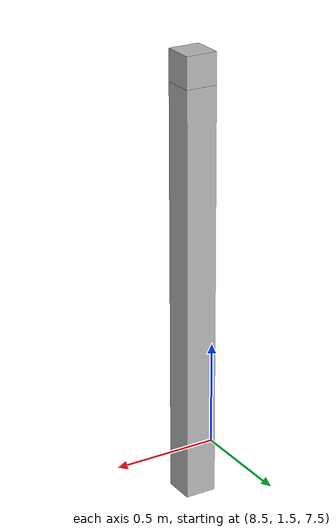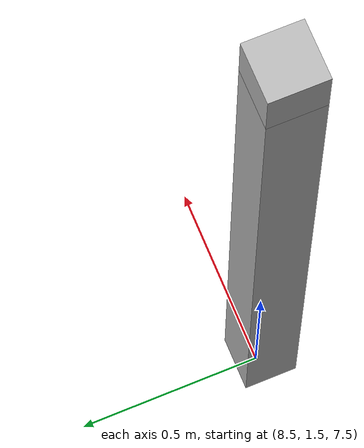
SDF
<sdf version="1.7">
 <world name="default">
  <model name="orthogonal_747_2.000.15_TS">
   <static>1</static>
   <link name="u_link_5_3_7">
    <inertial>
     <mass>1</mass>
     <inertia>
      <ixx>0.166667</ixx>
      <ixy>0</ixy>
      <ixz>0</ixz>
      <iyy>0.166667</iyy>
      <iyz>0</iyz>
      <izz>0.166667</izz>
     </inertia>
    </inertial>
    <pose>15.05 6.45 11.825 0 -0 0</pose>
    <visual name="visual_0">
     <laser_retro>5090</laser_retro>
     <geometry><box><size>0.15 1e-06 0.15</size></box></geometry>
     <material>
      <script><name>Gazebo/Grey</name><uri>file://media/materials/scripts/gazebo.material</uri></script>
      <shader type="pixel"><normal_map>__default__</normal_map></shader>
      <ambient>0.678 0.498 0.659 1</ambient>
      <diffuse>0.7 0.7 0.7 1</diffuse>
      <specular>0.01 0.01 0.01 1</specular>
      <emissive>0 0 0 1</emissive>
     </material>
     <pose>0 -0.075 0 0 -0 0</pose>
     <transparency>1</transparency>
    </visual>
    <visual name="visual_1">
     <laser_retro>5091</laser_retro>
     <geometry><box><size>0.15 1e-06 0.15</size></box></geometry>
     <material>
      <script><name>Gazebo/Grey</name><uri>file://media/materials/scripts/gazebo.material</uri></script>
      <shader type="pixel"><normal_map>__default__</normal_map></shader>
      <ambient>0.447 0.624 0.812 1</ambient>
      <diffuse>0.7 0.7 0.7 1</diffuse>
      <specular>0.01 0.01 0.01 1</specular>
      <emissive>0 0 0 1</emissive>
     </material>
     <pose>0 0.075 0 0 -0 0</pose>
     <transparency>1</transparency>
    </visual>
    <visual name="visual_2">
     <laser_retro>5092</laser_retro>
     <geometry><box><size>0.15 0.15 1e-06</size></box></geometry>
     <material>
      <script><name>Gazebo/Grey</name><uri>file://media/materials/scripts/gazebo.material</uri></script>
      <shader type="pixel"><normal_map>__default__</normal_map></shader>
      <ambient>0.988 0.686 0.243 1</ambient>
      <diffuse>0.7 0.7 0.7 1</diffuse>
      <specular>0.01 0.01 0.01 1</specular>
      <emissive>0 0 0 1</emissive>
     </material>
     <pose>0 0 -0.075 0 -0 0</pose>
     <transparency>1</transparency>
    </visual>
    <visual name="visual_3">
     <laser_retro>5093</laser_retro>
     <geometry><box><size>1e-06 0.15 0.15</size></box></geometry>
     <material>
      <script><name>Gazebo/Grey</name><uri>file://media/materials/scripts/gazebo.material</uri></script>
      <shader type="pixel"><normal_map>__default__</normal_map></shader>
      <ambient>0.988 0.914 0.31 1</ambient>
      <diffuse>0.7 0.7 0.7 1</diffuse>
      <specular>0.01 0.01 0.01 1</specular>
      <emissive>0 0 0 1</emissive>
     </material>
     <pose>0.075 0 0 0 -0 0</pose>
     <transparency>1</transparency>
    </visual>
    <visual name="visual_4">
     <laser_retro>5094</laser_retro>
     <geometry><box><size>0.15 0.15 1e-06</size></box></geometry>
     <material>
      <script><name>Gazebo/Grey</name><uri>file://media/materials/scripts/gazebo.material</uri></script>
      <shader type="pixel"><normal_map>__default__</normal_map></shader>
      <ambient>0.937 0.161 0.161 1</ambient>
      <diffuse>0.7 0.7 0.7 1</diffuse>
      <specular>0.01 0.01 0.01 1</specular>
      <emissive>0 0 0 1</emissive>
     </material>
     <pose>0 0 0.075 0 -0 0</pose>
     <transparency>1</transparency>
    </visual>
    <visual name="visual_5">
     <laser_retro>5095</laser_retro>
     <geometry><box><size>1e-06 0.15 0.15</size></box></geometry>
     <material>
      <script><name>Gazebo/Grey</name><uri>file://media/materials/scripts/gazebo.material</uri></script>
      <shader type="pixel"><normal_map>__default__</normal_map></shader>
      <ambient>0.541 0.886 0.204 1</ambient>
      <diffuse>0.7 0.7 0.7 1</diffuse>
      <specular>0.01 0.01 0.01 1</specular>
      <emissive>0 0 0 1</emissive>
     </material>
     <pose>-0.075 0 0 0 -0 0</pose>
     <transparency>1</transparency>
    </visual>
    <visual name="visual_texture">
     <geometry><box><size>0.149985 0.149985 0.149985</size></box></geometry>
     <material>
      <script>
       <uri>model://BASE_MODELS/simple_block_v2_textured/materials/scripts</uri>
       <uri>model://BASE_MODELS/simple_block_v2_textured/materials/textures</uri>
       <name>metal</name>
      </script>
     </material>
     <laser_retro>5096</laser_retro>
    </visual>
    <collision name="collision">
     <geometry><box><size>0.15 0.15 0.15</size></box></geometry>
     <surface>
      <friction>
       <ode><mu>1</mu><mu2>1</mu2><fdir1>0 0 0</fdir1><slip1>0</slip1><slip2>0</slip2></ode>
       <torsional>
        <coefficient>1</coefficient>
        <patch_radius>0</patch_radius>
        <surface_radius>0</surface_radius>
        <use_patch_radius>1</use_patch_radius>
        <ode><slip>0</slip></ode>
       </torsional>
      </friction>
      <bounce><restitution_coefficient>0</restitution_coefficient><threshold>1e+06</threshold></bounce>
      <contact>
       <collide_without_contact>0</collide_without_contact>
       <collide_without_contact_bitmask>1</collide_without_contact_bitmask>
       <collide_bitmask>1</collide_bitmask>
       <ode>
        <soft_cfm>0</soft_cfm>
        <soft_erp>0.2</soft_erp>
        <kp>1e+13</kp>
        <kd>1</kd>
        <max_vel>0.01</max_vel>
        <min_depth>0</min_depth>
       </ode>
       <bullet>
        <split_impulse>1</split_impulse>
        <split_impulse_penetration_threshold>-0.01</split_impulse_penetration_threshold>
        <soft_cfm>0</soft_cfm>
        <soft_erp>0.2</soft_erp>
        <kp>1e+13</kp>
        <kd>1</kd>
       </bullet>
      </contact>
     </surface>
    </collision>
   </link>
   <link name="z_link_5_3_7">
    <inertial>
     <mass>1</mass>
     <inertia>
      <ixx>0.166667</ixx>
      <ixy>0</ixy>
      <ixz>0</ixz>
      <iyy>0.166667</iyy>
      <iyz>0</iyz>
      <izz>0.166667</izz>
     </inertia>
    </inertial>
    <pose>15.05 6.45 10.75 0 -0 0</pose>
    <visual name="visual_0">
     <laser_retro>5097</laser_retro>
     <geometry><box><size>0.15 1e-06 2</size></box></geometry>
     <material>
      <script><name>Gazebo/Grey</name><uri>file://media/materials/scripts/gazebo.material</uri></script>
      <shader type="pixel"><normal_map>__default__</normal_map></shader>
      <ambient>0.678 0.498 0.659 1</ambient>
      <diffuse>0.7 0.7 0.7 1</diffuse>
      <specular>0.01 0.01 0.01 1</specular>
      <emissive>0 0 0 1</emissive>
     </material>
     <pose>0 -0.075 0 0 -0 0</pose>
     <transparency>1</transparency>
    </visual>
    <visual name="visual_1">
     <laser_retro>5098</laser_retro>
     <geometry><box><size>0.15 1e-06 2</size></box></geometry>
     <material>
      <script><name>Gazebo/Grey</name><uri>file://media/materials/scripts/gazebo.material</uri></script>
      <shader type="pixel"><normal_map>__default__</normal_map></shader>
      <ambient>0.447 0.624 0.812 1</ambient>
      <diffuse>0.7 0.7 0.7 1</diffuse>
      <specular>0.01 0.01 0.01 1</specular>
      <emissive>0 0 0 1</emissive>
     </material>
     <pose>0 0.075 0 0 -0 0</pose>
     <transparency>1</transparency>
    </visual>
    <visual name="visual_2">
     <laser_retro>5099</laser_retro>
     <geometry><box><size>0.15 0.15 1e-06</size></box></geometry>
     <material>
      <script><name>Gazebo/Grey</name><uri>file://media/materials/scripts/gazebo.material</uri></script>
      <shader type="pixel"><normal_map>__default__</normal_map></shader>
      <ambient>0.988 0.686 0.243 1</ambient>
      <diffuse>0.7 0.7 0.7 1</diffuse>
      <specular>0.01 0.01 0.01 1</specular>
      <emissive>0 0 0 1</emissive>
     </material>
     <pose>0 0 -1 0 -0 0</pose>
     <transparency>1</transparency>
    </visual>
    <visual name="visual_3">
     <laser_retro>5100</laser_retro>
     <geometry><box><size>1e-06 0.15 2</size></box></geometry>
     <material>
      <script><name>Gazebo/Grey</name><uri>file://media/materials/scripts/gazebo.material</uri></script>
      <shader type="pixel"><normal_map>__default__</normal_map></shader>
      <ambient>0.988 0.914 0.31 1</ambient>
      <diffuse>0.7 0.7 0.7 1</diffuse>
      <specular>0.01 0.01 0.01 1</specular>
      <emissive>0 0 0 1</emissive>
     </material>
     <pose>0.075 0 0 0 -0 0</pose>
     <transparency>1</transparency>
    </visual>
    <visual name="visual_4">
     <laser_retro>5101</laser_retro>
     <geometry><box><size>0.15 0.15 1e-06</size></box></geometry>
     <material>
      <script><name>Gazebo/Grey</name><uri>file://media/materials/scripts/gazebo.material</uri></script>
      <shader type="pixel"><normal_map>__default__</normal_map></shader>
      <ambient>0.937 0.161 0.161 1</ambient>
      <diffuse>0.7 0.7 0.7 1</diffuse>
      <specular>0.01 0.01 0.01 1</specular>
      <emissive>0 0 0 1</emissive>
     </material>
     <pose>0 0 1 0 -0 0</pose>
     <transparency>1</transparency>
    </visual>
    <visual name="visual_5">
     <laser_retro>5102</laser_retro>
     <geometry><box><size>1e-06 0.15 2</size></box></geometry>
     <material>
      <script><name>Gazebo/Grey</name><uri>file://media/materials/scripts/gazebo.material</uri></script>
      <shader type="pixel"><normal_map>__default__</normal_map></shader>
      <ambient>0.541 0.886 0.204 1</ambient>
      <diffuse>0.7 0.7 0.7 1</diffuse>
      <specular>0.01 0.01 0.01 1</specular>
      <emissive>0 0 0 1</emissive>
     </material>
     <pose>-0.075 0 0 0 -0 0</pose>
     <transparency>1</transparency>
    </visual>
    <visual name="visual_texture">
     <geometry><box><size>0.149985 0.149985 1.9998</size></box></geometry>
     <material>
      <script>
       <uri>model://BASE_MODELS/simple_block_v2_textured/materials/scripts</uri>
       <uri>model://BASE_MODELS/simple_block_v2_textured/materials/textures</uri>
       <name>metal</name>
      </script>
     </material>
     <laser_retro>5103</laser_retro>
    </visual>
    <collision name="collision">
     <geometry><box><size>0.15 0.15 2</size></box></geometry>
     <surface>
      <friction>
       <ode><mu>1</mu><mu2>1</mu2><fdir1>0 0 0</fdir1><slip1>0</slip1><slip2>0</slip2></ode>
       <torsional>
        <coefficient>1</coefficient>
        <patch_radius>0</patch_radius>
        <surface_radius>0</surface_radius>
        <use_patch_radius>1</use_patch_radius>
        <ode><slip>0</slip></ode>
       </torsional>
      </friction>
      <bounce><restitution_coefficient>0</restitution_coefficient><threshold>1e+06</threshold></bounce>
      <contact>
       <collide_without_contact>0</collide_without_contact>
       <collide_without_contact_bitmask>1</collide_without_contact_bitmask>
       <collide_bitmask>1</collide_bitmask>
       <ode>
        <soft_cfm>0</soft_cfm>
        <soft_erp>0.2</soft_erp>
        <kp>1e+13</kp>
        <kd>1</kd>
        <max_vel>0.01</max_vel>
        <min_depth>0</min_depth>
       </ode>
       <bullet>
        <split_impulse>1</split_impulse>
        <split_impulse_penetration_threshold>-0.01</split_impulse_penetration_threshold>
        <soft_cfm>0</soft_cfm>
        <soft_erp>0.2</soft_erp>
        <kp>1e+13</kp>
        <kd>1</kd>
       </bullet>
      </contact>
     </surface>
    </collision>
   </link>
   <pose>-6.47624 -5 -2.5 0 -0 0</pose>
  </model>
 </world>
</sdf>
